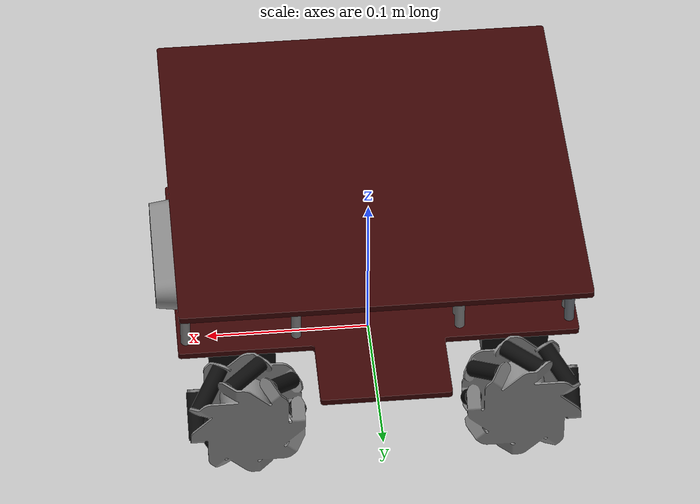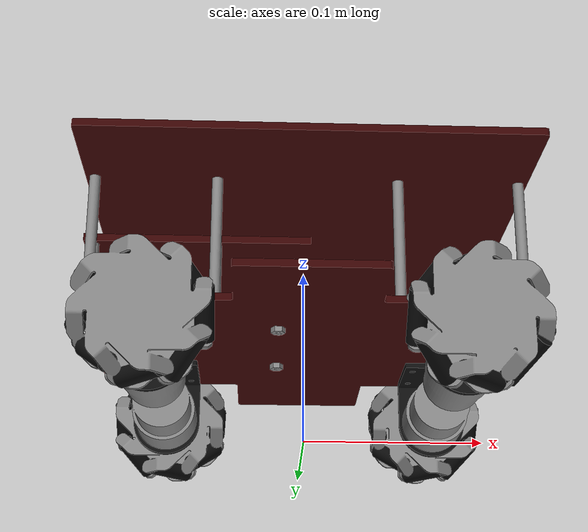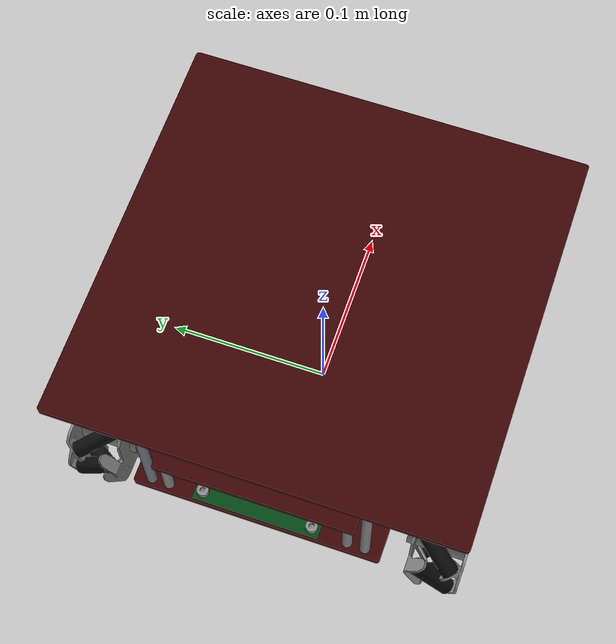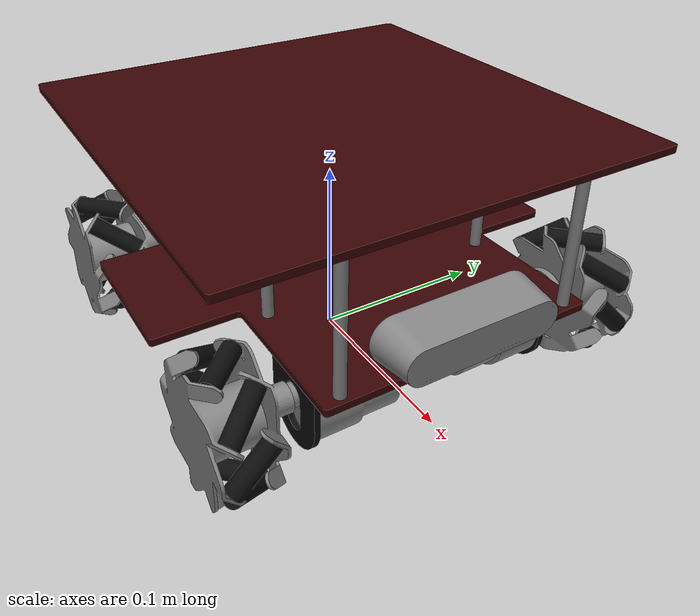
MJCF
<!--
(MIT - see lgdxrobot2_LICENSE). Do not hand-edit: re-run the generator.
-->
<mujoco model="lgdxrobot2">
  <compiler angle="radian" meshdir="meshes" autolimits="true"/>

  <default>
    <default class="lgdxrobot2">
      <default class="visual">
        <geom type="mesh" contype="0" conaffinity="0" group="2"/>
      </default>
      <default class="collision">
        <geom group="3" rgba="0.6 0.1 0.1 0.35"/>
      </default>
      <default class="wheel_collision">
        <geom type="sphere" group="3" rgba="0.05 0.05 0.05 0.4"
              friction="0.02 0.005 0.0001" priority="2"/>
      </default>
      <default class="wheel">
        <!-- axis 0 0 1 in the wheel's OWN frame, which the joint's rpy has already rotated to lie
             along the robot's y. The description's own axis, not a re-derived one. -->
        <joint axis="0 0 1" damping="0.001" armature="0.0005"/>
      </default>
    </default>
  </default>

  <asset>
    <material name="lgdx_aluminium" rgba="0.527 0.527 0.527 1"/>
    <material name="lgdx_black" rgba="0.05 0.05 0.05 1"/>
    <material name="lgdx_pcb" rgba="0.0 0.262 0.069 1"/>
    <material name="lgdx_red" rgba="0.223 0.011 0.012 1"/>
    <material name="lgdx_steel" rgba="0.447 0.474 0.502 1"/>
    <mesh file="b_Camera_001_.obj"/>
    <mesh file="b_Coupling_Nut_70mm_001_006__m0.obj"/>
    <mesh file="b_Coupling_Nut_70mm_001_006__m1.obj"/>
    <mesh file="b_LGDXRobot2_Board_001_.obj"/>
    <mesh file="b_M4_Nut_001_021.obj"/>
    <mesh file="b_Motor_001_001.obj"/>
    <mesh file="b_Mounting_Bracket_001_001.obj"/>
    <mesh file="b_Top_Plate_001_.obj"/>
    <mesh file="b_Wheel_1_001___m0.obj"/>
    <mesh file="b_Wheel_1_001___m1.obj"/>
    <mesh file="b_Wheel_2_001___m0.obj"/>
    <mesh file="b_Wheel_2_001___m1.obj"/>
    <mesh file="b_Wheel_3_001___m0.obj"/>
    <mesh file="b_Wheel_3_001___m1.obj"/>
    <mesh file="b_Wheel_4_001___m0.obj"/>
    <mesh file="b_Wheel_4_001___m1.obj"/>
  </asset>

  <worldbody>
    <body name="base_link" childclass="lgdxrobot2">
      <freejoint name="base_free"/>
      <inertial pos="0.0 0 0" mass="2.2768" diaginertia="0.0625 0.2125 0.25"/>
      <site name="base_imu" pos="-0.08351 0.00000 0.0649" size="0.005" rgba="0 0 0 0"/>
      <!-- No scanner here: the RPLIDAR C1 on lidar_link is the `rplidar_c1` device the manifest
           mounts at the description's lidar_link_joint, with its own housing. -->
        <geom class="visual" mesh="b_LGDXRobot2_Board_001_" material="lgdx_pcb" pos="0 0 0"/>
        <geom class="visual" mesh="b_Mounting_Bracket_001_001" material="lgdx_black" pos="0 0 0"/>
        <geom class="visual" mesh="b_Motor_001_001" material="lgdx_aluminium" pos="0 0 0"/>
        <geom class="visual" mesh="b_Top_Plate_001_" material="lgdx_red" pos="0 0 0"/>
        <geom class="visual" mesh="b_M4_Nut_001_021" material="lgdx_aluminium" pos="0 0 0"/>
        <geom class="visual" mesh="b_Coupling_Nut_70mm_001_006__m0" material="lgdx_aluminium" pos="0 0 0"/>
        <geom class="visual" mesh="b_Coupling_Nut_70mm_001_006__m1" material="lgdx_steel" pos="0 0 0"/>
        <geom class="visual" mesh="b_Camera_001_" material="lgdx_aluminium" pos="0.108 0.00026 0.05931"/>
        <geom class="collision" type="box" size="0.12 0.12 0.039" name="base_collision"
              pos="0.00000 0.00000 0.09400"/>
        <body name="wheel1_link" pos="0.08200 0.10357 0.03681" quat="0.7071055 -0.7071081 0 0">
          <inertial pos="0 0 0" mass="0.1018" diaginertia="0.00004448 0.00004448 0.00007158"/>
          <joint name="wheel1_link_joint" class="wheel"/>
          <geom class="visual" mesh="b_Wheel_1_001___m0" material="lgdx_aluminium" pos="0 0 0" quat="0.7071408 0.7070727 0 0"/>
          <geom class="visual" mesh="b_Wheel_1_001___m1" material="lgdx_black" pos="0 0 0" quat="0.7071408 0.7070727 0 0"/>
          <geom class="wheel_collision" name="wheel1_link_tyre" size="0.0375"/>
        </body>
        <body name="wheel2_link" pos="0.08200 -0.10357 0.03681" quat="0.7071055 -0.7071081 0 0">
          <inertial pos="0 0 0" mass="0.1018" diaginertia="0.00004448 0.00004448 0.00007158"/>
          <joint name="wheel2_link_joint" class="wheel"/>
          <geom class="visual" mesh="b_Wheel_2_001___m0" material="lgdx_aluminium" pos="0 0 0" quat="0.7071408 0.7070727 0 0"/>
          <geom class="visual" mesh="b_Wheel_2_001___m1" material="lgdx_black" pos="0 0 0" quat="0.7071408 0.7070727 0 0"/>
          <geom class="wheel_collision" name="wheel2_link_tyre" size="0.0375"/>
        </body>
        <body name="wheel3_link" pos="-0.08200 0.10357 0.03681" quat="0.7071055 -0.7071081 0 0">
          <inertial pos="0 0 0" mass="0.1018" diaginertia="0.00004448 0.00004448 0.00007158"/>
          <joint name="wheel3_link_joint" class="wheel"/>
          <geom class="visual" mesh="b_Wheel_3_001___m0" material="lgdx_aluminium" pos="0 0 0" quat="0.7071408 0.7070727 0 0"/>
          <geom class="visual" mesh="b_Wheel_3_001___m1" material="lgdx_black" pos="0 0 0" quat="0.7071408 0.7070727 0 0"/>
          <geom class="wheel_collision" name="wheel3_link_tyre" size="0.0375"/>
        </body>
        <body name="wheel4_link" pos="-0.08200 -0.10357 0.03681" quat="0.7071055 -0.7071081 0 0">
          <inertial pos="0 0 0" mass="0.1018" diaginertia="0.00004448 0.00004448 0.00007158"/>
          <joint name="wheel4_link_joint" class="wheel"/>
          <geom class="visual" mesh="b_Wheel_4_001___m0" material="lgdx_aluminium" pos="0 0 0" quat="0.7071408 0.7070727 0 0"/>
          <geom class="visual" mesh="b_Wheel_4_001___m1" material="lgdx_black" pos="0 0 0" quat="0.7071408 0.7070727 0 0"/>
          <geom class="wheel_collision" name="wheel4_link_tyre" size="0.0375"/>
        </body>
    </body>
  </worldbody>

  <actuator>
    <velocity name="base_vx" joint="base_free" gear="1 0 0 0 0 0" kv="300" ctrlrange="-0.33 0.33" forcerange="-40 40"/>
    <velocity name="base_vy" joint="base_free" gear="0 1 0 0 0 0" kv="300" ctrlrange="-0.33 0.33" forcerange="-40 40"/>
    <velocity name="base_wz" joint="base_free" gear="0 0 0 0 0 1" kv="30" ctrlrange="-0.3 0.3" forcerange="-8 8"/>
    <!-- Observational wheel servos, driven from the mecanum inverse kinematics so the wheels turn,
         and turn differently when strafing. They transmit almost nothing. -->
    <velocity name="wheel1_motor" joint="wheel1_link_joint" kv="0.05" ctrlrange="-20 20" forcerange="-0.5 0.5"/>
    <velocity name="wheel2_motor" joint="wheel2_link_joint" kv="0.05" ctrlrange="-20 20" forcerange="-0.5 0.5"/>
    <velocity name="wheel3_motor" joint="wheel3_link_joint" kv="0.05" ctrlrange="-20 20" forcerange="-0.5 0.5"/>
    <velocity name="wheel4_motor" joint="wheel4_link_joint" kv="0.05" ctrlrange="-20 20" forcerange="-0.5 0.5"/>
  </actuator>

  <keyframe>
    <!-- base_link rides at wheel radius minus the wheel-centre height. -->
    <key name="home" qpos="0 0 0.00069 1 0 0 0  0 0 0 0"/>
  </keyframe>
</mujoco>
